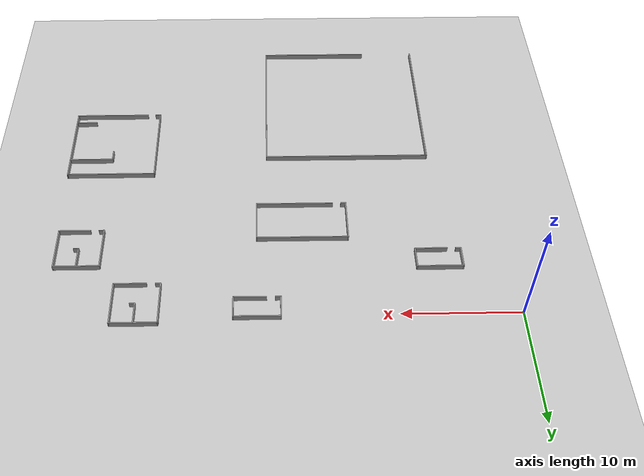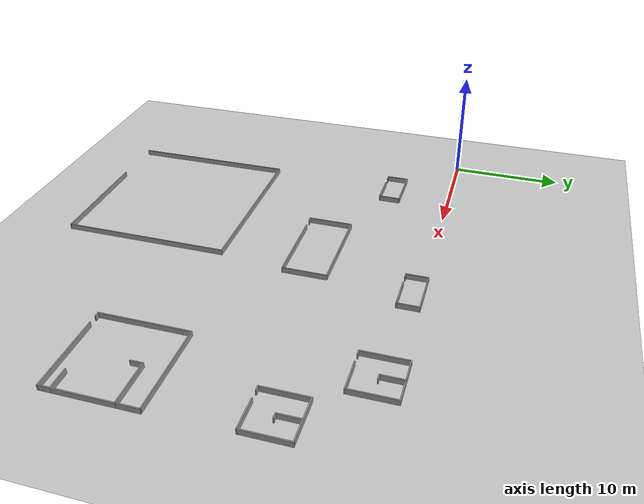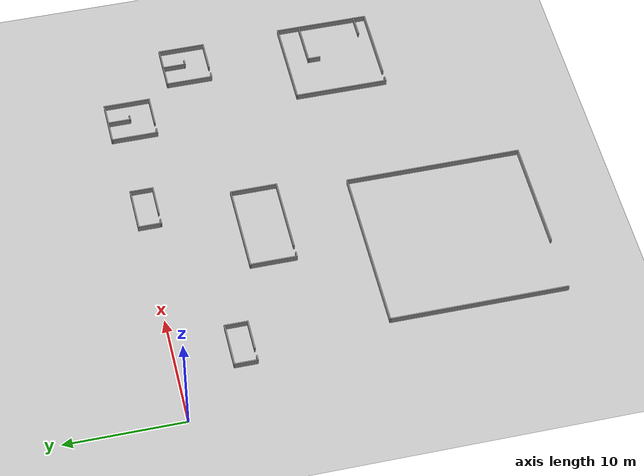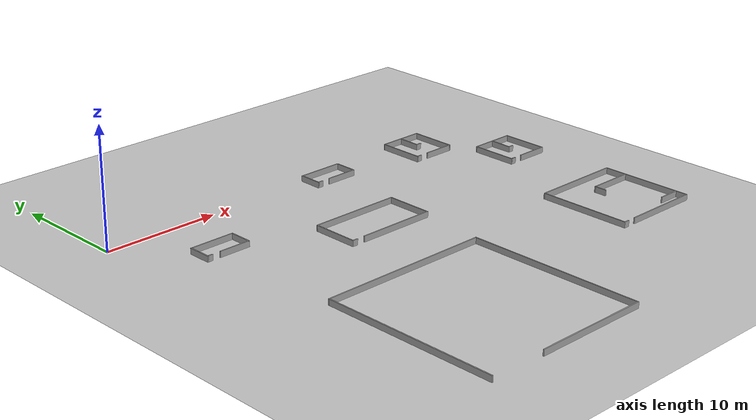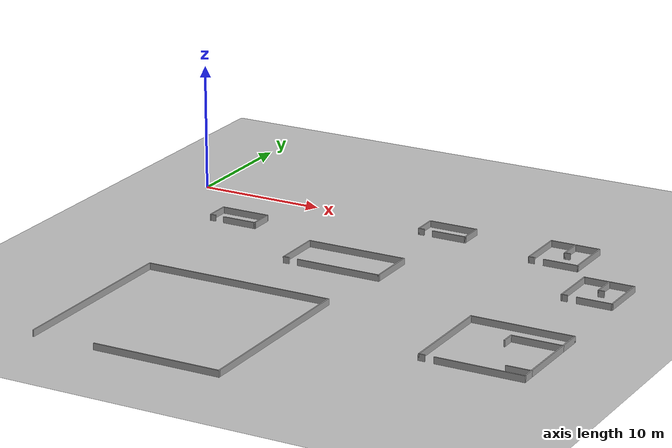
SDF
<sdf version="1.6">
 <world name="default">
  <model name="ground_plane">
   <static>1</static>
   <link name="link">
    <collision name="collision">
     <geometry><plane><normal>0 0 1</normal><size>80 80</size></plane></geometry>
     <surface>
      <contact><collide_bitmask>65535</collide_bitmask></contact>
      <friction><ode><mu>100</mu><mu2>50</mu2></ode></friction>
     </surface>
     <max_contacts>15</max_contacts>
    </collision>
    <visual name="visual">
     <cast_shadows>0</cast_shadows>
     <geometry><plane><normal>0 0 1</normal><size>80 80</size></plane></geometry>
     <material>
      <script><uri>file://media/materials/scripts/gazebo.material</uri><name>Gazebo/Grey</name></script>
     </material>
    </visual>
   </link>
  </model>
  <model name="shape7">
   <pose>13.3 -25.1 0 0 -0 0</pose>
   <link name="Wall_14">
    <collision name="Wall_14_Collision">
     <geometry><box><size>15 0.1 0.5</size></box></geometry>
     <pose>0 0 0.25 0 -0 0</pose>
    </collision>
    <visual name="Wall_14_Visual">
     <pose>0 0 0.25 0 -0 0</pose>
     <geometry><box><size>15 0.1 0.5</size></box></geometry>
     <material>
      <script><uri>file://media/materials/scripts/gazebo.material</uri><name>Gazebo/Grey</name></script>
      <ambient>1 1 1 1</ambient>
     </material>
     <meta><layer>0</layer></meta>
    </visual>
    <pose>0 7.45 0 0 -0 0</pose>
   </link>
   <link name="Wall_15">
    <collision name="Wall_15_Collision">
     <geometry><box><size>15 0.1 0.5</size></box></geometry>
     <pose>0 0 0.25 0 -0 0</pose>
    </collision>
    <visual name="Wall_15_Visual">
     <pose>0 0 0.25 0 -0 0</pose>
     <geometry><box><size>15 0.1 0.5</size></box></geometry>
     <material>
      <script><uri>file://media/materials/scripts/gazebo.material</uri><name>Gazebo/Grey</name></script>
      <ambient>1 1 1 1</ambient>
     </material>
     <meta><layer>0</layer></meta>
    </visual>
    <pose>7.45 -0 0 0 -0 -1.5708</pose>
   </link>
   <link name="Wall_16">
    <collision name="Wall_16_Collision">
     <geometry><box><size>10 0.1 0.5</size></box></geometry>
     <pose>0 0 0.25 0 -0 0</pose>
    </collision>
    <visual name="Wall_16_Visual">
     <pose>0 0 0.25 0 -0 0</pose>
     <geometry><box><size>10 0.1 0.5</size></box></geometry>
     <material>
      <script><uri>file://media/materials/scripts/gazebo.material</uri><name>Gazebo/Grey</name></script>
      <ambient>1 1 1 1</ambient>
     </material>
     <meta><layer>0</layer></meta>
    </visual>
    <pose>2.5 -7.45 0 0 -0 3.14159</pose>
   </link>
   <link name="Wall_18">
    <collision name="Wall_18_Collision">
     <geometry><box><size>15 0.1 0.5</size></box></geometry>
     <pose>0 0 0.25 0 -0 0</pose>
    </collision>
    <visual name="Wall_18_Visual">
     <pose>0 0 0.25 0 -0 0</pose>
     <geometry><box><size>15 0.1 0.5</size></box></geometry>
     <material>
      <script><uri>file://media/materials/scripts/gazebo.material</uri><name>Gazebo/Grey</name></script>
      <ambient>1 1 1 1</ambient>
     </material>
     <meta><layer>0</layer></meta>
    </visual>
    <pose>-7.45 -0 0 0 -0 -1.5708</pose>
   </link>
   <static>1</static>
  </model>
  <model name="shape4">
   <pose>36.8 -6.9 0 0 -0 0</pose>
   <link name="Wall_0">
    <collision name="Wall_0_Collision">
     <geometry><box><size>4 0.1 0.5</size></box></geometry>
     <pose>0 0 0.25 0 -0 0</pose>
    </collision>
    <visual name="Wall_0_Visual">
     <pose>0 0 0.25 0 -0 0</pose>
     <geometry><box><size>4 0.1 0.5</size></box></geometry>
     <material>
      <script><uri>file://media/materials/scripts/gazebo.material</uri><name>Gazebo/Grey</name></script>
      <ambient>1 1 1 1</ambient>
     </material>
     <meta><layer>0</layer></meta>
    </visual>
    <pose>-1.95 0 0 0 -0 -1.5708</pose>
   </link>
   <link name="Wall_1">
    <collision name="Wall_1_Collision">
     <geometry><box><size>0.5 0.1 0.5</size></box></geometry>
     <pose>0 0 0.25 0 -0 0</pose>
    </collision>
    <visual name="Wall_1_Visual">
     <pose>0 0 0.25 0 -0 0</pose>
     <geometry><box><size>0.5 0.1 0.5</size></box></geometry>
     <material>
      <script><uri>file://media/materials/scripts/gazebo.material</uri><name>Gazebo/Grey</name></script>
      <ambient>1 1 1 1</ambient>
     </material>
     <meta><layer>0</layer></meta>
    </visual>
    <pose>-1.75 -1.95 0 0 -0 0</pose>
   </link>
   <link name="Wall_3">
    <collision name="Wall_3_Collision">
     <geometry><box><size>4 0.1 0.5</size></box></geometry>
     <pose>0 0 0.25 0 -0 0</pose>
    </collision>
    <visual name="Wall_3_Visual">
     <pose>0 0 0.25 0 -0 0</pose>
     <geometry><box><size>4 0.1 0.5</size></box></geometry>
     <material>
      <script><uri>file://media/materials/scripts/gazebo.material</uri><name>Gazebo/Grey</name></script>
      <ambient>1 1 1 1</ambient>
     </material>
     <meta><layer>0</layer></meta>
    </visual>
    <pose>0 1.95 0 0 -0 0</pose>
   </link>
   <link name="Wall_4">
    <collision name="Wall_4_Collision">
     <geometry><box><size>4 0.1 0.5</size></box></geometry>
     <pose>0 0 0.25 0 -0 0</pose>
    </collision>
    <visual name="Wall_4_Visual">
     <pose>0 0 0.25 0 -0 0</pose>
     <geometry><box><size>4 0.1 0.5</size></box></geometry>
     <material>
      <script><uri>file://media/materials/scripts/gazebo.material</uri><name>Gazebo/Grey</name></script>
      <ambient>1 1 1 1</ambient>
     </material>
     <meta><layer>0</layer></meta>
    </visual>
    <pose>1.95 0 0 0 -0 -1.5708</pose>
   </link>
   <link name="Wall_5">
    <collision name="Wall_5_Collision">
     <geometry><box><size>2.8 0.1 0.5</size></box></geometry>
     <pose>0 0 0.25 0 -0 0</pose>
    </collision>
    <visual name="Wall_5_Visual">
     <pose>0 0 0.25 0 -0 0</pose>
     <geometry><box><size>2.8 0.1 0.5</size></box></geometry>
     <material>
      <script><uri>file://media/materials/scripts/gazebo.material</uri><name>Gazebo/Grey</name></script>
      <ambient>1 1 1 1</ambient>
     </material>
     <meta><layer>0</layer></meta>
    </visual>
    <pose>0.6 -1.95 0 0 -0 3.14159</pose>
   </link>
   <link name="Wall_7">
    <collision name="Wall_7_Collision">
     <geometry><box><size>2 0.1 0.5</size></box></geometry>
     <pose>0 0 0.25 0 -0 0</pose>
    </collision>
    <visual name="Wall_7_Visual">
     <pose>0 0 0.25 0 -0 0</pose>
     <geometry><box><size>2 0.1 0.5</size></box></geometry>
     <material>
      <script><uri>file://media/materials/scripts/gazebo.material</uri><name>Gazebo/Grey</name></script>
      <ambient>1 1 1 1</ambient>
     </material>
     <meta><layer>0</layer></meta>
    </visual>
    <pose>0.015 0.991 0 0 -0 -1.5708</pose>
   </link>
   <link name="Wall_8">
    <collision name="Wall_8_Collision">
     <geometry><box><size>0.5 0.1 0.5</size></box></geometry>
     <pose>0 0 0.25 0 -0 0</pose>
    </collision>
    <visual name="Wall_8_Visual">
     <pose>0 0 0.25 0 -0 0</pose>
     <geometry><box><size>0.5 0.1 0.5</size></box></geometry>
     <material>
      <script><uri>file://media/materials/scripts/gazebo.material</uri><name>Gazebo/Grey</name></script>
      <ambient>1 1 1 1</ambient>
     </material>
     <meta><layer>0</layer></meta>
    </visual>
    <pose>0.215 0.041 0 0 -0 0</pose>
   </link>
   <static>1</static>
  </model>
  <model name="shape2">
   <pose>21.6 -0.599998 0 0 -0 0</pose>
   <link name="Wall_0">
    <collision name="Wall_0_Collision">
     <geometry><box><size>3.98685 0.1 0.5</size></box></geometry>
     <pose>0 0 0.25 0 -0 0</pose>
    </collision>
    <visual name="Wall_0_Visual">
     <pose>0 0 0.25 0 -0 0</pose>
     <geometry><box><size>3.98685 0.1 0.5</size></box></geometry>
     <material>
      <script><uri>file://media/materials/scripts/gazebo.material</uri><name>Gazebo/Grey</name></script>
      <ambient>1 1 1 1</ambient>
     </material>
     <meta><layer>0</layer></meta>
    </visual>
    <pose>0.003288 0.95 0 0 -0 0</pose>
   </link>
   <link name="Wall_1">
    <collision name="Wall_1_Collision">
     <geometry><box><size>2 0.1 0.5</size></box></geometry>
     <pose>0 0 0.25 0 -0 0</pose>
    </collision>
    <visual name="Wall_1_Visual">
     <pose>0 0 0.25 0 -0 0</pose>
     <geometry><box><size>2 0.1 0.5</size></box></geometry>
     <material>
      <script><uri>file://media/materials/scripts/gazebo.material</uri><name>Gazebo/Grey</name></script>
      <ambient>1 1 1 1</ambient>
     </material>
     <meta><layer>0</layer></meta>
    </visual>
    <pose>1.94671 0 0 0 -0 -1.5708</pose>
   </link>
   <link name="Wall_2">
    <collision name="Wall_2_Collision">
     <geometry><box><size>2.8 0.1 0.5</size></box></geometry>
     <pose>0 0 0.25 0 -0 0</pose>
    </collision>
    <visual name="Wall_2_Visual">
     <pose>0 0 0.25 0 -0 0</pose>
     <geometry><box><size>2.8 0.1 0.5</size></box></geometry>
     <material>
      <script><uri>file://media/materials/scripts/gazebo.material</uri><name>Gazebo/Grey</name></script>
      <ambient>1 1 1 1</ambient>
     </material>
     <meta><layer>0</layer></meta>
    </visual>
    <pose>0.596712 -0.95 0 0 -0 3.14159</pose>
   </link>
   <link name="Wall_4">
    <collision name="Wall_4_Collision">
     <geometry><box><size>2 0.1 0.5</size></box></geometry>
     <pose>0 0 0.25 0 -0 0</pose>
    </collision>
    <visual name="Wall_4_Visual">
     <pose>0 0 0.25 0 -0 0</pose>
     <geometry><box><size>2 0.1 0.5</size></box></geometry>
     <material>
      <script><uri>file://media/materials/scripts/gazebo.material</uri><name>Gazebo/Grey</name></script>
      <ambient>1 1 1 1</ambient>
     </material>
     <meta><layer>0</layer></meta>
    </visual>
    <pose>-1.94671 0 0 0 -0 -1.5708</pose>
   </link>
   <link name="Wall_5">
    <collision name="Wall_5_Collision">
     <geometry><box><size>0.5 0.1 0.5</size></box></geometry>
     <pose>0 0 0.25 0 -0 0</pose>
    </collision>
    <visual name="Wall_5_Visual">
     <pose>0 0 0.25 0 -0 0</pose>
     <geometry><box><size>0.5 0.1 0.5</size></box></geometry>
     <material>
      <script><uri>file://media/materials/scripts/gazebo.material</uri><name>Gazebo/Grey</name></script>
      <ambient>1 1 1 1</ambient>
     </material>
     <meta><layer>0</layer></meta>
    </visual>
    <pose>-1.74671 -0.95 0 0 -0 0</pose>
   </link>
   <static>1</static>
  </model>
  <model name="shape4">
   <pose>31.5 -1.1 0 0 -0 0</pose>
   <link name="Wall_0">
    <collision name="Wall_0_Collision">
     <geometry><box><size>4 0.1 0.5</size></box></geometry>
     <pose>0 0 0.25 0 -0 0</pose>
    </collision>
    <visual name="Wall_0_Visual">
     <pose>0 0 0.25 0 -0 0</pose>
     <geometry><box><size>4 0.1 0.5</size></box></geometry>
     <material>
      <script><uri>file://media/materials/scripts/gazebo.material</uri><name>Gazebo/Grey</name></script>
      <ambient>1 1 1 1</ambient>
     </material>
     <meta><layer>0</layer></meta>
    </visual>
    <pose>-1.95 0 0 0 -0 -1.5708</pose>
   </link>
   <link name="Wall_1">
    <collision name="Wall_1_Collision">
     <geometry><box><size>0.5 0.1 0.5</size></box></geometry>
     <pose>0 0 0.25 0 -0 0</pose>
    </collision>
    <visual name="Wall_1_Visual">
     <pose>0 0 0.25 0 -0 0</pose>
     <geometry><box><size>0.5 0.1 0.5</size></box></geometry>
     <material>
      <script><uri>file://media/materials/scripts/gazebo.material</uri><name>Gazebo/Grey</name></script>
      <ambient>1 1 1 1</ambient>
     </material>
     <meta><layer>0</layer></meta>
    </visual>
    <pose>-1.75 -1.95 0 0 -0 0</pose>
   </link>
   <link name="Wall_3">
    <collision name="Wall_3_Collision">
     <geometry><box><size>4 0.1 0.5</size></box></geometry>
     <pose>0 0 0.25 0 -0 0</pose>
    </collision>
    <visual name="Wall_3_Visual">
     <pose>0 0 0.25 0 -0 0</pose>
     <geometry><box><size>4 0.1 0.5</size></box></geometry>
     <material>
      <script><uri>file://media/materials/scripts/gazebo.material</uri><name>Gazebo/Grey</name></script>
      <ambient>1 1 1 1</ambient>
     </material>
     <meta><layer>0</layer></meta>
    </visual>
    <pose>0 1.95 0 0 -0 0</pose>
   </link>
   <link name="Wall_4">
    <collision name="Wall_4_Collision">
     <geometry><box><size>4 0.1 0.5</size></box></geometry>
     <pose>0 0 0.25 0 -0 0</pose>
    </collision>
    <visual name="Wall_4_Visual">
     <pose>0 0 0.25 0 -0 0</pose>
     <geometry><box><size>4 0.1 0.5</size></box></geometry>
     <material>
      <script><uri>file://media/materials/scripts/gazebo.material</uri><name>Gazebo/Grey</name></script>
      <ambient>1 1 1 1</ambient>
     </material>
     <meta><layer>0</layer></meta>
    </visual>
    <pose>1.95 0 0 0 -0 -1.5708</pose>
   </link>
   <link name="Wall_5">
    <collision name="Wall_5_Collision">
     <geometry><box><size>2.8 0.1 0.5</size></box></geometry>
     <pose>0 0 0.25 0 -0 0</pose>
    </collision>
    <visual name="Wall_5_Visual">
     <pose>0 0 0.25 0 -0 0</pose>
     <geometry><box><size>2.8 0.1 0.5</size></box></geometry>
     <material>
      <script><uri>file://media/materials/scripts/gazebo.material</uri><name>Gazebo/Grey</name></script>
      <ambient>1 1 1 1</ambient>
     </material>
     <meta><layer>0</layer></meta>
    </visual>
    <pose>0.6 -1.95 0 0 -0 3.14159</pose>
   </link>
   <link name="Wall_7">
    <collision name="Wall_7_Collision">
     <geometry><box><size>2 0.1 0.5</size></box></geometry>
     <pose>0 0 0.25 0 -0 0</pose>
    </collision>
    <visual name="Wall_7_Visual">
     <pose>0 0 0.25 0 -0 0</pose>
     <geometry><box><size>2 0.1 0.5</size></box></geometry>
     <material>
      <script><uri>file://media/materials/scripts/gazebo.material</uri><name>Gazebo/Grey</name></script>
      <ambient>1 1 1 1</ambient>
     </material>
     <meta><layer>0</layer></meta>
    </visual>
    <pose>0.015 0.991 0 0 -0 -1.5708</pose>
   </link>
   <link name="Wall_8">
    <collision name="Wall_8_Collision">
     <geometry><box><size>0.5 0.1 0.5</size></box></geometry>
     <pose>0 0 0.25 0 -0 0</pose>
    </collision>
    <visual name="Wall_8_Visual">
     <pose>0 0 0.25 0 -0 0</pose>
     <geometry><box><size>0.5 0.1 0.5</size></box></geometry>
     <material>
      <script><uri>file://media/materials/scripts/gazebo.material</uri><name>Gazebo/Grey</name></script>
      <ambient>1 1 1 1</ambient>
     </material>
     <meta><layer>0</layer></meta>
    </visual>
    <pose>0.215 0.041 0 0 -0 0</pose>
   </link>
   <static>1</static>
  </model>
  <model name="shape3">
   <pose>17.7 -9.8 0 0 -0 0</pose>
   <link name="Wall_11">
    <collision name="Wall_11_Collision">
     <geometry><box><size>4 0.1 0.5</size></box></geometry>
     <pose>0 0 0.25 0 -0 0</pose>
    </collision>
    <visual name="Wall_11_Visual">
     <pose>0 0 0.25 0 -0 0</pose>
     <geometry><box><size>4 0.1 0.5</size></box></geometry>
     <material>
      <script><uri>file://media/materials/scripts/gazebo.material</uri><name>Gazebo/Grey</name></script>
      <ambient>1 1 1 1</ambient>
     </material>
     <meta><layer>0</layer></meta>
    </visual>
    <pose>-3.95 0 0 0 -0 -1.5708</pose>
   </link>
   <link name="Wall_12">
    <collision name="Wall_12_Collision">
     <geometry><box><size>0.5 0.1 0.5</size></box></geometry>
     <pose>0 0 0.25 0 -0 0</pose>
    </collision>
    <visual name="Wall_12_Visual">
     <pose>0 0 0.25 0 -0 0</pose>
     <geometry><box><size>0.5 0.1 0.5</size></box></geometry>
     <material>
      <script><uri>file://media/materials/scripts/gazebo.material</uri><name>Gazebo/Grey</name></script>
      <ambient>1 1 1 1</ambient>
     </material>
     <meta><layer>0</layer></meta>
    </visual>
    <pose>-3.75 -1.95 0 0 -0 0</pose>
   </link>
   <link name="Wall_7">
    <collision name="Wall_7_Collision">
     <geometry><box><size>8 0.1 0.5</size></box></geometry>
     <pose>0 0 0.25 0 -0 0</pose>
    </collision>
    <visual name="Wall_7_Visual">
     <pose>0 0 0.25 0 -0 0</pose>
     <geometry><box><size>8 0.1 0.5</size></box></geometry>
     <material>
      <script><uri>file://media/materials/scripts/gazebo.material</uri><name>Gazebo/Grey</name></script>
      <ambient>1 1 1 1</ambient>
     </material>
     <meta><layer>0</layer></meta>
    </visual>
    <pose>-0 1.95 0 0 -0 0</pose>
   </link>
   <link name="Wall_8">
    <collision name="Wall_8_Collision">
     <geometry><box><size>4 0.1 0.5</size></box></geometry>
     <pose>0 0 0.25 0 -0 0</pose>
    </collision>
    <visual name="Wall_8_Visual">
     <pose>0 0 0.25 0 -0 0</pose>
     <geometry><box><size>4 0.1 0.5</size></box></geometry>
     <material>
      <script><uri>file://media/materials/scripts/gazebo.material</uri><name>Gazebo/Grey</name></script>
      <ambient>1 1 1 1</ambient>
     </material>
     <meta><layer>0</layer></meta>
    </visual>
    <pose>3.95 0 0 0 -0 -1.5708</pose>
   </link>
   <link name="Wall_9">
    <collision name="Wall_9_Collision">
     <geometry><box><size>6.8 0.1 0.5</size></box></geometry>
     <pose>0 0 0.25 0 -0 0</pose>
    </collision>
    <visual name="Wall_9_Visual">
     <pose>0 0 0.25 0 -0 0</pose>
     <geometry><box><size>6.8 0.1 0.5</size></box></geometry>
     <material>
      <script><uri>file://media/materials/scripts/gazebo.material</uri><name>Gazebo/Grey</name></script>
      <ambient>1 1 1 1</ambient>
     </material>
     <meta><layer>0</layer></meta>
    </visual>
    <pose>0.6 -1.95 0 0 -0 3.14159</pose>
   </link>
   <static>1</static>
  </model>
  <model name="shape6">
   <pose>35 -19.6 0 0 -0 0</pose>
   <link name="Wall_0">
    <collision name="Wall_0_Collision">
     <geometry><box><size>8 0.1 0.5</size></box></geometry>
     <pose>0 0 0.25 0 -0 0</pose>
    </collision>
    <visual name="Wall_0_Visual">
     <pose>0 0 0.25 0 -0 0</pose>
     <geometry><box><size>8 0.1 0.5</size></box></geometry>
     <material>
      <script><uri>file://media/materials/scripts/gazebo.material</uri><name>Gazebo/Grey</name></script>
      <ambient>1 1 1 1</ambient>
     </material>
     <meta><layer>0</layer></meta>
    </visual>
    <pose>-3.95 0 0 0 -0 -1.5708</pose>
   </link>
   <link name="Wall_1">
    <collision name="Wall_1_Collision">
     <geometry><box><size>0.5 0.1 0.5</size></box></geometry>
     <pose>0 0 0.25 0 -0 0</pose>
    </collision>
    <visual name="Wall_1_Visual">
     <pose>0 0 0.25 0 -0 0</pose>
     <geometry><box><size>0.5 0.1 0.5</size></box></geometry>
     <material>
      <script><uri>file://media/materials/scripts/gazebo.material</uri><name>Gazebo/Grey</name></script>
      <ambient>1 1 1 1</ambient>
     </material>
     <meta><layer>0</layer></meta>
    </visual>
    <pose>-3.75 -3.95 0 0 -0 0</pose>
   </link>
   <link name="Wall_10">
    <collision name="Wall_10_Collision">
     <geometry><box><size>1.95 0.1 0.5</size></box></geometry>
     <pose>0 0 0.25 0 -0 0</pose>
    </collision>
    <visual name="Wall_10_Visual">
     <pose>0 0 0.25 0 -0 0</pose>
     <geometry><box><size>1.95 0.1 0.5</size></box></geometry>
     <material>
      <script><uri>file://media/materials/scripts/gazebo.material</uri><name>Gazebo/Grey</name></script>
      <ambient>1 1 1 1</ambient>
     </material>
     <meta><layer>0</layer></meta>
    </visual>
    <pose>3.025 -2.95 0 0 -0 3.14159</pose>
   </link>
   <link name="Wall_12">
    <collision name="Wall_12_Collision">
     <geometry><box><size>1.1 0.1 0.5</size></box></geometry>
     <pose>0 0 0.25 0 -0 0</pose>
    </collision>
    <visual name="Wall_12_Visual">
     <pose>0 0 0.25 0 -0 0</pose>
     <geometry><box><size>1.1 0.1 0.5</size></box></geometry>
     <material>
      <script><uri>file://media/materials/scripts/gazebo.material</uri><name>Gazebo/Grey</name></script>
      <ambient>1 1 1 1</ambient>
     </material>
     <meta><layer>0</layer></meta>
    </visual>
    <pose>3.95 -3.45 0 0 -0 -1.5708</pose>
   </link>
   <link name="Wall_13">
    <collision name="Wall_13_Collision">
     <geometry><box><size>6.8 0.1 0.5</size></box></geometry>
     <pose>0 0 0.25 0 -0 0</pose>
    </collision>
    <visual name="Wall_13_Visual">
     <pose>0 0 0.25 0 -0 0</pose>
     <geometry><box><size>6.8 0.1 0.5</size></box></geometry>
     <material>
      <script><uri>file://media/materials/scripts/gazebo.material</uri><name>Gazebo/Grey</name></script>
      <ambient>1 1 1 1</ambient>
     </material>
     <meta><layer>0</layer></meta>
    </visual>
    <pose>0.6 -3.95 0 0 -0 3.14159</pose>
   </link>
   <link name="Wall_3">
    <collision name="Wall_3_Collision">
     <geometry><box><size>8 0.1 0.5</size></box></geometry>
     <pose>0 0 0.25 0 -0 0</pose>
    </collision>
    <visual name="Wall_3_Visual">
     <pose>0 0 0.25 0 -0 0</pose>
     <geometry><box><size>8 0.1 0.5</size></box></geometry>
     <material>
      <script><uri>file://media/materials/scripts/gazebo.material</uri><name>Gazebo/Grey</name></script>
      <ambient>1 1 1 1</ambient>
     </material>
     <meta><layer>0</layer></meta>
    </visual>
    <pose>-0 3.95 0 0 -0 0</pose>
   </link>
   <link name="Wall_4">
    <collision name="Wall_4_Collision">
     <geometry><box><size>2 0.1 0.5</size></box></geometry>
     <pose>0 0 0.25 0 -0 0</pose>
    </collision>
    <visual name="Wall_4_Visual">
     <pose>0 0 0.25 0 -0 0</pose>
     <geometry><box><size>2 0.1 0.5</size></box></geometry>
     <material>
      <script><uri>file://media/materials/scripts/gazebo.material</uri><name>Gazebo/Grey</name></script>
      <ambient>1 1 1 1</ambient>
     </material>
     <meta><layer>0</layer></meta>
    </visual>
    <pose>3.95 3 0 0 -0 -1.5708</pose>
   </link>
   <link name="Wall_5">
    <collision name="Wall_5_Collision">
     <geometry><box><size>5.1 0.1 0.5</size></box></geometry>
     <pose>0 0 0.25 0 -0 0</pose>
    </collision>
    <visual name="Wall_5_Visual">
     <pose>0 0 0.25 0 -0 0</pose>
     <geometry><box><size>5.1 0.1 0.5</size></box></geometry>
     <material>
      <script><uri>file://media/materials/scripts/gazebo.material</uri><name>Gazebo/Grey</name></script>
      <ambient>1 1 1 1</ambient>
     </material>
     <meta><layer>0</layer></meta>
    </visual>
    <pose>3.95 -0.45 0 0 -0 -1.5708</pose>
   </link>
   <link name="Wall_7">
    <collision name="Wall_7_Collision">
     <geometry><box><size>4 0.1 0.5</size></box></geometry>
     <pose>0 0 0.25 0 -0 0</pose>
    </collision>
    <visual name="Wall_7_Visual">
     <pose>0 0 0.25 0 -0 0</pose>
     <geometry><box><size>4 0.1 0.5</size></box></geometry>
     <material>
      <script><uri>file://media/materials/scripts/gazebo.material</uri><name>Gazebo/Grey</name></script>
      <ambient>1 1 1 1</ambient>
     </material>
     <meta><layer>0</layer></meta>
    </visual>
    <pose>2 2.05 0 0 -0 3.14159</pose>
   </link>
   <link name="Wall_8">
    <collision name="Wall_8_Collision">
     <geometry><box><size>1.1 0.1 0.5</size></box></geometry>
     <pose>0 0 0.25 0 -0 0</pose>
    </collision>
    <visual name="Wall_8_Visual">
     <pose>0 0 0.25 0 -0 0</pose>
     <geometry><box><size>1.1 0.1 0.5</size></box></geometry>
     <material>
      <script><uri>file://media/materials/scripts/gazebo.material</uri><name>Gazebo/Grey</name></script>
      <ambient>1 1 1 1</ambient>
     </material>
     <meta><layer>0</layer></meta>
    </visual>
    <pose>0.05 1.55 0 0 -0 -1.5708</pose>
   </link>
   <static>1</static>
  </model>
  <model name="shape2">
   <pose>6.2 -5.5 0 0 -0 0</pose>
   <link name="Wall_0">
    <collision name="Wall_0_Collision">
     <geometry><box><size>3.98685 0.1 0.5</size></box></geometry>
     <pose>0 0 0.25 0 -0 0</pose>
    </collision>
    <visual name="Wall_0_Visual">
     <pose>0 0 0.25 0 -0 0</pose>
     <geometry><box><size>3.98685 0.1 0.5</size></box></geometry>
     <material>
      <script><uri>file://media/materials/scripts/gazebo.material</uri><name>Gazebo/Grey</name></script>
      <ambient>1 1 1 1</ambient>
     </material>
     <meta><layer>0</layer></meta>
    </visual>
    <pose>0.003288 0.95 0 0 -0 0</pose>
   </link>
   <link name="Wall_1">
    <collision name="Wall_1_Collision">
     <geometry><box><size>2 0.1 0.5</size></box></geometry>
     <pose>0 0 0.25 0 -0 0</pose>
    </collision>
    <visual name="Wall_1_Visual">
     <pose>0 0 0.25 0 -0 0</pose>
     <geometry><box><size>2 0.1 0.5</size></box></geometry>
     <material>
      <script><uri>file://media/materials/scripts/gazebo.material</uri><name>Gazebo/Grey</name></script>
      <ambient>1 1 1 1</ambient>
     </material>
     <meta><layer>0</layer></meta>
    </visual>
    <pose>1.94671 0 0 0 -0 -1.5708</pose>
   </link>
   <link name="Wall_2">
    <collision name="Wall_2_Collision">
     <geometry><box><size>2.8 0.1 0.5</size></box></geometry>
     <pose>0 0 0.25 0 -0 0</pose>
    </collision>
    <visual name="Wall_2_Visual">
     <pose>0 0 0.25 0 -0 0</pose>
     <geometry><box><size>2.8 0.1 0.5</size></box></geometry>
     <material>
      <script><uri>file://media/materials/scripts/gazebo.material</uri><name>Gazebo/Grey</name></script>
      <ambient>1 1 1 1</ambient>
     </material>
     <meta><layer>0</layer></meta>
    </visual>
    <pose>0.596712 -0.95 0 0 -0 3.14159</pose>
   </link>
   <link name="Wall_4">
    <collision name="Wall_4_Collision">
     <geometry><box><size>2 0.1 0.5</size></box></geometry>
     <pose>0 0 0.25 0 -0 0</pose>
    </collision>
    <visual name="Wall_4_Visual">
     <pose>0 0 0.25 0 -0 0</pose>
     <geometry><box><size>2 0.1 0.5</size></box></geometry>
     <material>
      <script><uri>file://media/materials/scripts/gazebo.material</uri><name>Gazebo/Grey</name></script>
      <ambient>1 1 1 1</ambient>
     </material>
     <meta><layer>0</layer></meta>
    </visual>
    <pose>-1.94671 0 0 0 -0 -1.5708</pose>
   </link>
   <link name="Wall_5">
    <collision name="Wall_5_Collision">
     <geometry><box><size>0.5 0.1 0.5</size></box></geometry>
     <pose>0 0 0.25 0 -0 0</pose>
    </collision>
    <visual name="Wall_5_Visual">
     <pose>0 0 0.25 0 -0 0</pose>
     <geometry><box><size>0.5 0.1 0.5</size></box></geometry>
     <material>
      <script><uri>file://media/materials/scripts/gazebo.material</uri><name>Gazebo/Grey</name></script>
      <ambient>1 1 1 1</ambient>
     </material>
     <meta><layer>0</layer></meta>
    </visual>
    <pose>-1.74671 -0.95 0 0 -0 0</pose>
   </link>
   <static>1</static>
  </model>
 </world>
</sdf>
